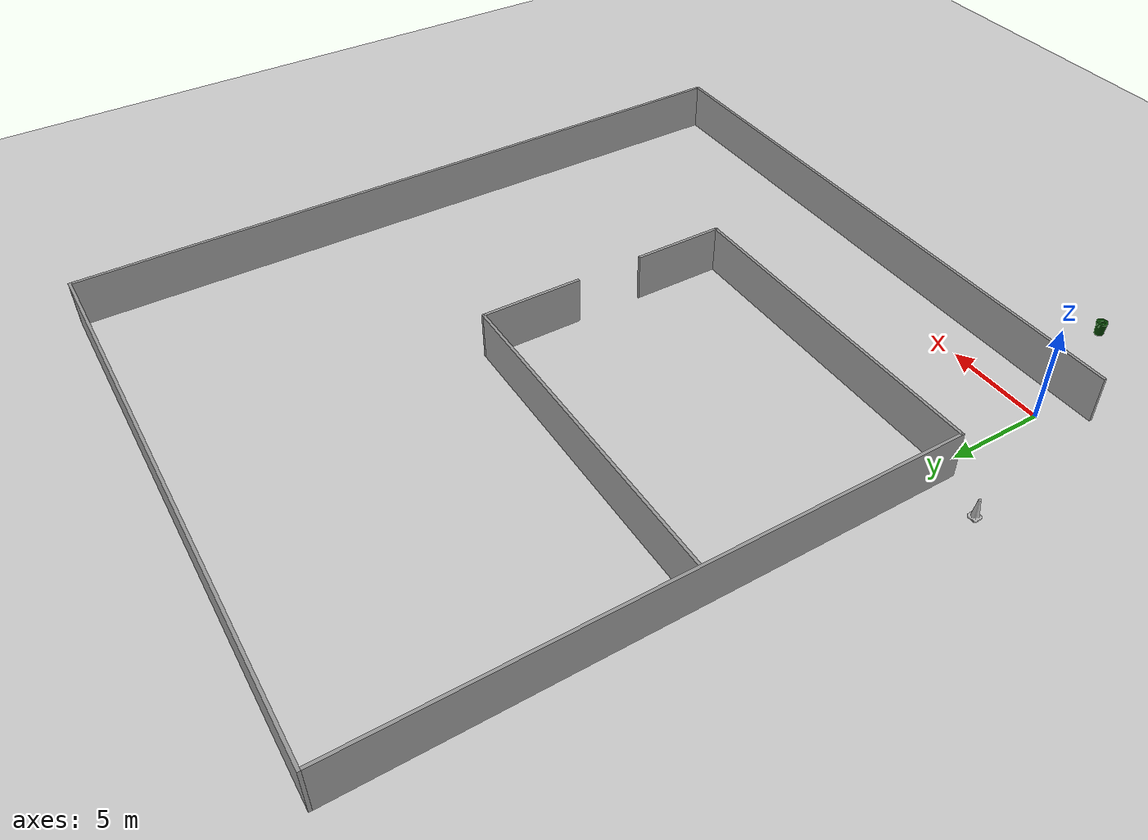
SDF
<sdf version="1.6">
 <world name="warehouse">
  <include>
   <uri>model://ground_plane</uri>
   <material><script><uri>file://media/materials/scripts/gazebo.material</uri></script></material>
  </include>
  <include><uri>model://sun</uri></include>
  <include><uri>model://construction_cone</uri><pose>-2.92805 6.67879 -0 0 -0 6.2e-05</pose></include>
  <include>
   <uri>model://first_2015_trash_can</uri>
   <pose>2.50193 -7.10146 -1e-06 -2.1e-05 -0 -0.00466</pose>
  </include>
  <include><uri>model://warehouse</uri></include>
 </world>
</sdf>

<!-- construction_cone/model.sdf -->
<sdf version="1.5">
  <model name="Construction Cone">
    <link name="link">
      <collision name="collision">
        <geometry>
          <mesh>
            <scale>10 10 10</scale>
            <uri>file://isr-testbed/construction_cone/meshes/construction_cone.dae</uri>
          </mesh>
        </geometry>
      </collision>
      <visual name="visual">
        <geometry>
          <mesh>
            <scale>10 10 10</scale>
            <uri>file://isr-testbed/construction_cone/meshes/construction_cone.dae</uri>
          </mesh>
        </geometry>
      </visual>
    </link>
  </model>
</sdf>

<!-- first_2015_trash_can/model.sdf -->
<sdf version="1.5">
  <model name="first_2015_trash_can">
    <link name="link">
      <inertial>
        <pose>0 0 0.3683 0 0 0</pose>
        <mass>4.83076</mass>
        <inertia>
          <ixx>0.281534052</ixx>
          <ixy>0</ixy>
          <ixz>0</ixz>
          <iyy>0.281534052</iyy>
          <iyz>0</iyz>
          <izz>0.126222831</izz>
        </inertia>
      </inertial>

      <visual name="visual">
        <geometry>
          <mesh>
            <uri>model://first_2015_trash_can/meshes/trash_can.dae</uri>
          </mesh>
        </geometry>
      </visual>

      <collision name="collision">
        <geometry>
          <mesh>
            <uri>model://first_2015_trash_can/meshes/trash_can.dae</uri>
          </mesh>
        </geometry>
      </collision>
    </link>
  </model>
</sdf>

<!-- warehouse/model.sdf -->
<sdf version='1.6'>
  <model name='warehouse'>
    <pose frame=''>13.8762 16.4954 0 0 -0 0</pose>
    <link name='Wall_10'>
      <collision name='Wall_10_Collision'>
        <geometry>
          <box>
            <size>30 0.15 2.5</size>
          </box>
        </geometry>
        <pose frame=''>0 0 1.25 0 -0 0</pose>
      </collision>
      <visual name='Wall_10_Visual'>
        <pose frame=''>0 0 1.25 0 -0 0</pose>
        <geometry>
          <box>
            <size>30 0.15 2.5</size>
          </box>
        </geometry>
        <material>
          <script>
            <uri>file://media/materials/scripts/gazebo.material</uri>
            <name>Gazebo/Grey</name>
          </script>
          <ambient>1 1 1 1</ambient>
        </material>
        <meta>
          <layer>0</layer>
        </meta>
      </visual>
      <pose frame=''>0.374998 18.425 0 0 -0 3.14159</pose>
    </link>
    <link name='Wall_11'>
      <collision name='Wall_11_Collision'>
        <geometry>
          <box>
            <size>29.25 0.15 2.5</size>
          </box>
        </geometry>
        <pose frame=''>0 0 1.25 0 -0 0</pose>
      </collision>
      <visual name='Wall_11_Visual'>
        <pose frame=''>0 0 1.25 0 -0 0</pose>
        <geometry>
          <box>
            <size>29.25 0.15 2.5</size>
          </box>
        </geometry>
        <material>
          <script>
            <uri>file://media/materials/scripts/gazebo.material</uri>
            <name>Gazebo/Grey</name>
          </script>
          <ambient>1 1 1 1</ambient>
        </material>
        <meta>
          <layer>0</layer>
        </meta>
      </visual>
      <pose frame=''>-14.55 3.875 0 0 -0 -1.5708</pose>
    </link>
    <link name='Wall_12'>
      <collision name='Wall_12_Collision'>
        <geometry>
          <box>
            <size>17.5 0.15 2.5</size>
          </box>
        </geometry>
        <pose frame=''>0 0 1.25 0 -0 0</pose>
      </collision>
      <visual name='Wall_12_Visual'>
        <pose frame=''>0 0 1.25 0 -0 0</pose>
        <geometry>
          <box>
            <size>17.5 0.15 2.5</size>
          </box>
        </geometry>
        <material>
          <script>
            <uri>file://media/materials/scripts/gazebo.material</uri>
            <name>Gazebo/Grey</name>
          </script>
          <ambient>1 1 1 1</ambient>
        </material>
        <meta>
          <layer>0</layer>
        </meta>
      </visual>
      <pose frame=''>-5.875 -10.675 0 0 -0 0</pose>
    </link>
    <link name='Wall_13'>
      <collision name='Wall_13_Collision'>
        <geometry>
          <box>
            <size>4.75 0.15 2.5</size>
          </box>
        </geometry>
        <pose frame=''>0 0 1.25 0 -0 0</pose>
      </collision>
      <visual name='Wall_13_Visual'>
        <pose frame=''>0 0 1.25 0 -0 0</pose>
        <geometry>
          <box>
            <size>4.75 0.15 2.5</size>
          </box>
        </geometry>
        <material>
          <script>
            <uri>file://media/materials/scripts/gazebo.material</uri>
            <name>Gazebo/Grey</name>
          </script>
          <ambient>1 1 1 1</ambient>
        </material>
        <meta>
          <layer>0</layer>
        </meta>
      </visual>
      <pose frame=''>2.8 -8.375 0 0 -0 1.5708</pose>
    </link>
    <link name='Wall_21'>
      <collision name='Wall_21_Collision'>
        <geometry>
          <box>
            <size>5.25 0.15 2.5</size>
          </box>
        </geometry>
        <pose frame=''>0 0 1.25 0 -0 0</pose>
      </collision>
      <visual name='Wall_21_Visual'>
        <pose frame=''>0 0 1.25 0 -0 0</pose>
        <geometry>
          <box>
            <size>5.25 0.15 2.5</size>
          </box>
        </geometry>
        <material>
          <script>
            <uri>file://media/materials/scripts/gazebo.material</uri>
            <name>Gazebo/Grey</name>
          </script>
          <ambient>1 1 1 1</ambient>
        </material>
        <meta>
          <layer>0</layer>
        </meta>
      </visual>
      <pose frame=''>2.8 0.075 0 0 -0 1.5708</pose>
    </link>
    <link name='Wall_22'>
      <collision name='Wall_22_Collision'>
        <geometry>
          <box>
            <size>17.5 0.15 2.5</size>
          </box>
        </geometry>
        <pose frame=''>0 0 1.25 0 -0 0</pose>
      </collision>
      <visual name='Wall_22_Visual'>
        <pose frame=''>0 0 1.25 0 -0 0</pose>
        <geometry>
          <box>
            <size>17.5 0.15 2.5</size>
          </box>
        </geometry>
        <material>
          <script>
            <uri>file://media/materials/scripts/gazebo.material</uri>
            <name>Gazebo/Grey</name>
          </script>
          <ambient>1 1 1 1</ambient>
        </material>
        <meta>
          <layer>0</layer>
        </meta>
      </visual>
      <pose frame=''>-5.875 2.625 0 0 -0 3.14159</pose>
    </link>
    <link name='Wall_8'>
      <collision name='Wall_8_Collision'>
        <geometry>
          <box>
            <size>30.75 0.15 2.5</size>
          </box>
        </geometry>
        <pose frame=''>0 0 1.25 0 -0 0</pose>
      </collision>
      <visual name='Wall_8_Visual'>
        <pose frame=''>0 0 1.25 0 -0 0</pose>
        <geometry>
          <box>
            <size>30.75 0.15 2.5</size>
          </box>
        </geometry>
        <material>
          <script>
            <uri>file://media/materials/scripts/gazebo.material</uri>
            <name>Gazebo/Grey</name>
          </script>
          <ambient>1 1 1 1</ambient>
        </material>
        <meta>
          <layer>0</layer>
        </meta>
      </visual>
      <pose frame=''>-2e-06 -18.425 0 0 -0 0</pose>
    </link>
    <link name='Wall_9'>
      <collision name='Wall_9_Collision'>
        <geometry>
          <box>
            <size>37 0.15 2.5</size>
          </box>
        </geometry>
        <pose frame=''>0 0 1.25 0 -0 0</pose>
      </collision>
      <visual name='Wall_9_Visual'>
        <pose frame=''>0 0 1.25 0 -0 0</pose>
        <geometry>
          <box>
            <size>37 0.15 2.5</size>
          </box>
        </geometry>
        <material>
          <script>
            <uri>file://media/materials/scripts/gazebo.material</uri>
            <name>Gazebo/Grey</name>
          </script>
          <ambient>1 1 1 1</ambient>
        </material>
        <meta>
          <layer>0</layer>
        </meta>
      </visual>
      <pose frame=''>15.3 -1e-06 0 0 -0 1.5708</pose>
    </link>
    <static>1</static>
  </model>
</sdf>
